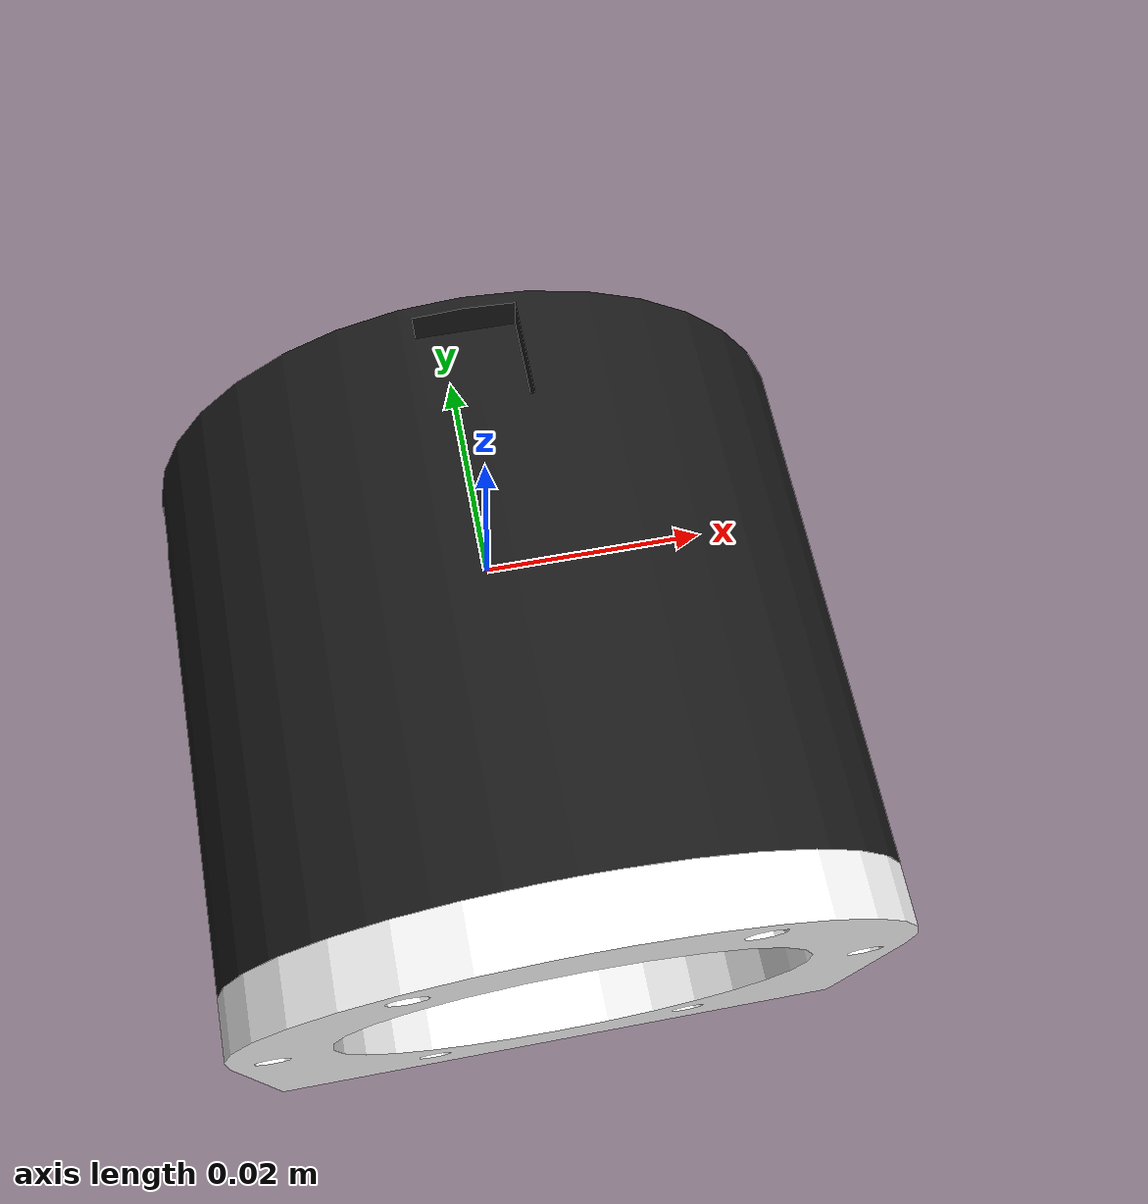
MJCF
<mujoco model="link5">
  <default>
    <default class="visual">
      <geom group="2" type="mesh" contype="0" conaffinity="0"/>
    </default>
    <default class="collision">
      <geom group="3" type="mesh"/>
    </default>
  </default>
  <asset>
    <material name="motor.001" specular="0.5" shininess="0.25" rgba="0.100000 0.100000 0.100000 1.000000"/>
    <material name="white_metal.001" specular="0.5" shininess="0.25" rgba="1.000000 1.000000 1.000000 1.000000"/>
    <mesh file="link5_0.obj"/>
    <mesh file="link5_1.obj"/>
    <mesh file="link5_collision_0.obj"/>
    <mesh file="link5_collision_1.obj"/>
  </asset>
  <worldbody>
    <body name="link5">
      <geom mesh="link5_0" material="motor.001" class="visual"/>
      <geom mesh="link5_1" material="white_metal.001" class="visual"/>
      <geom mesh="link5_collision_0" rgba="0.9967205441800204 0.10250738416393679 0.10117899445358502 1" class="collision"/>
      <geom mesh="link5_collision_1" rgba="0.19356706513022792 0.45608372518948037 0.8437793554836679 1" class="collision"/>
    </body>
  </worldbody>
</mujoco>
